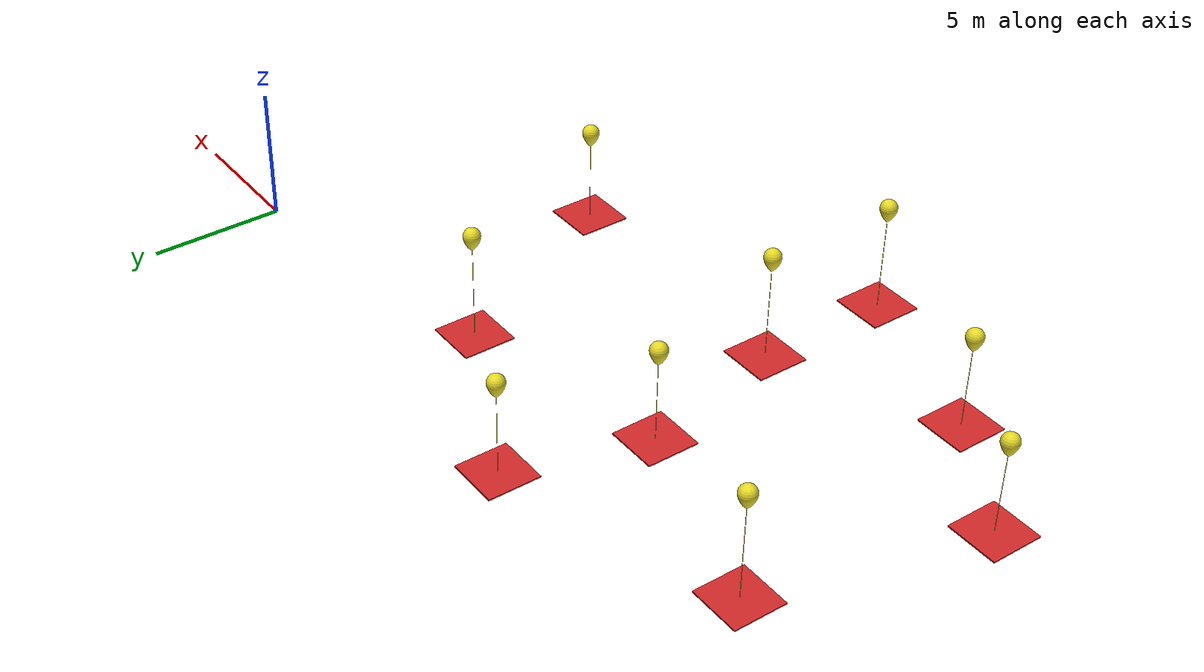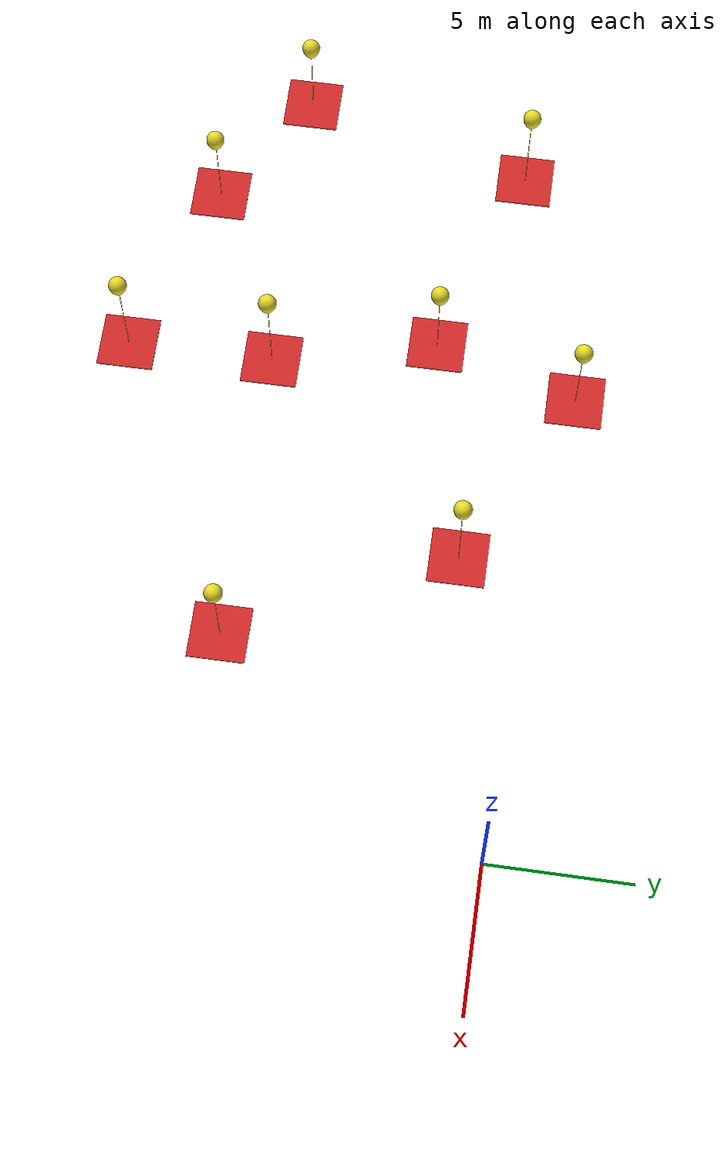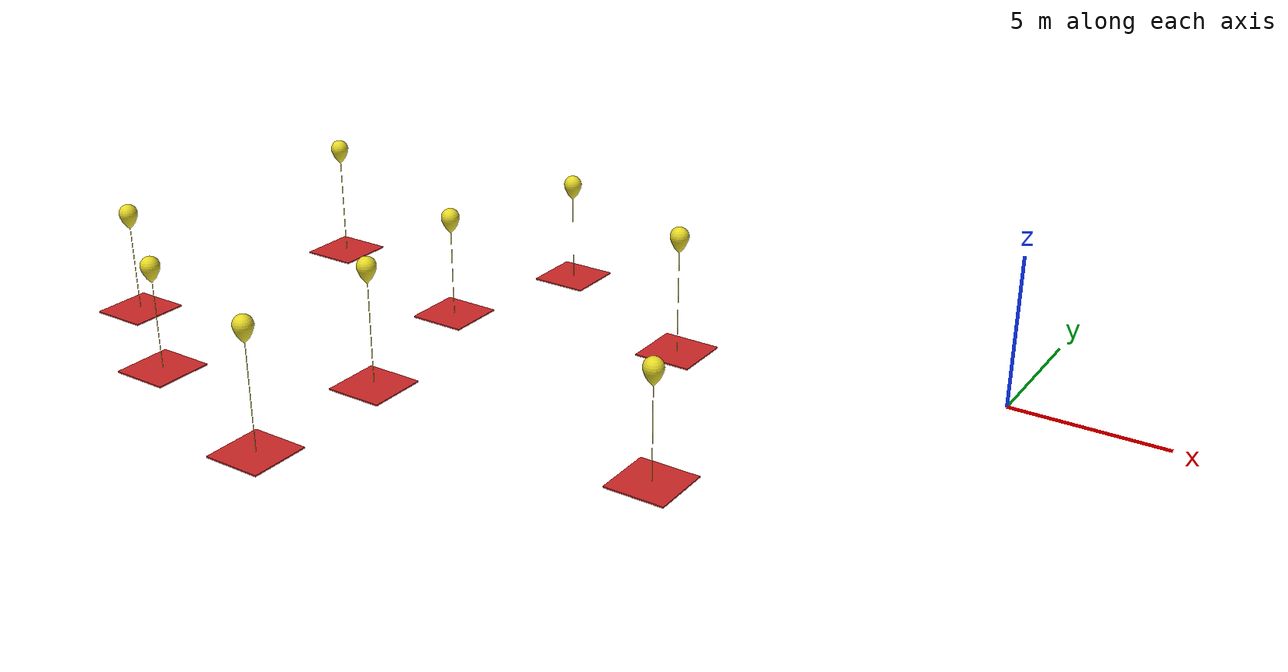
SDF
<sdf version="1.6">
 <world name="default">
  <model name="Balloon4.5m">
   <link name="link_0">
    <pose>0 0 -0.025 0 -0 0</pose>
    <inertial>
     <mass>100</mass>
     <inertia>
      <ixx>0.166667</ixx>
      <ixy>0</ixy>
      <ixz>0</ixz>
      <iyy>0.166667</iyy>
      <iyz>0</iyz>
      <izz>0.166667</izz>
     </inertia>
    </inertial>
    <visual name="visual">
     <geometry><mesh><uri>/home/varun/MBZIRC_Arena/Balloon/Base.dae</uri><scale>1 1 1</scale></mesh></geometry>
     <material>
      <lighting>1</lighting>
      <script><uri>file://media/materials/scripts/gazebo.material</uri><name>Gazebo/Red</name></script>
      <shader type="vertex"><normal_map>__default__</normal_map></shader>
      <ambient>0.3 0.3 0.3 1</ambient>
      <diffuse>1 1 1 1</diffuse>
      <specular>0.1 0.1 0.1 1</specular>
      <emissive>0 0 0 1</emissive>
     </material>
    </visual>
    <collision name="collision">
     <geometry><mesh><uri>/home/varun/MBZIRC_Arena/Balloon/Base.dae</uri><scale>1 1 1</scale></mesh></geometry>
     <surface>
      <friction>
       <ode><mu>1</mu><mu2>1</mu2><fdir1>0 0 0</fdir1><slip1>0</slip1><slip2>0</slip2></ode>
       <torsional>
        <coefficient>1</coefficient>
        <patch_radius>0</patch_radius>
        <surface_radius>0</surface_radius>
        <use_patch_radius>1</use_patch_radius>
        <ode><slip>0</slip></ode>
       </torsional>
      </friction>
      <bounce><restitution_coefficient>0</restitution_coefficient><threshold>1e+06</threshold></bounce>
      <contact>
       <collide_without_contact>0</collide_without_contact>
       <collide_without_contact_bitmask>1</collide_without_contact_bitmask>
       <collide_bitmask>1</collide_bitmask>
       <ode>
        <soft_cfm>0</soft_cfm>
        <soft_erp>0.2</soft_erp>
        <kp>1e+13</kp>
        <kd>1</kd>
        <max_vel>0.01</max_vel>
        <min_depth>0</min_depth>
       </ode>
       <bullet>
        <split_impulse>1</split_impulse>
        <split_impulse_penetration_threshold>-0.01</split_impulse_penetration_threshold>
        <soft_cfm>0</soft_cfm>
        <soft_erp>0.2</soft_erp>
        <kp>1e+13</kp>
        <kd>1</kd>
       </bullet>
      </contact>
     </surface>
    </collision>
   </link>
   <link name="link_1">
    <pose>-0 -0 0.025 0 -0 0</pose>
    <inertial>
     <mass>0.2</mass>
     <inertia>
      <ixx>0.166667</ixx>
      <ixy>0</ixy>
      <ixz>0</ixz>
      <iyy>0.166667</iyy>
      <iyz>0</iyz>
      <izz>0.166667</izz>
     </inertia>
     <pose>0 0 4.5 0 -0 0</pose>
    </inertial>
    <visual name="visual">
     <geometry>
      <mesh><uri>/home/varun/MBZIRC_Arena/Balloon/Balloon4.5m.dae</uri><scale>1 1 1</scale></mesh>
     </geometry>
     <material>
      <lighting>1</lighting>
      <script><uri>file://media/materials/scripts/gazebo.material</uri><name>Gazebo/Yellow</name></script>
      <shader type="pixel"><normal_map>__default__</normal_map></shader>
      <ambient>0.3 0.3 0.3 1</ambient>
      <diffuse>0.7 0.7 0.7 1</diffuse>
      <specular>0.01 0.01 0.01 1</specular>
      <emissive>0 0 0 1</emissive>
     </material>
    </visual>
    <collision name="collision">
     <geometry>
      <mesh><uri>/home/varun/MBZIRC_Arena/Balloon/Balloon4.5m.dae</uri><scale>1 1 1</scale></mesh>
     </geometry>
     <surface>
      <friction>
       <ode><mu>1</mu><mu2>1</mu2><fdir1>0 0 0</fdir1><slip1>0</slip1><slip2>0</slip2></ode>
       <torsional>
        <coefficient>1</coefficient>
        <patch_radius>0</patch_radius>
        <surface_radius>0</surface_radius>
        <use_patch_radius>1</use_patch_radius>
        <ode><slip>0</slip></ode>
       </torsional>
      </friction>
      <bounce><restitution_coefficient>0</restitution_coefficient><threshold>1e+06</threshold></bounce>
      <contact>
       <collide_without_contact>0</collide_without_contact>
       <collide_without_contact_bitmask>1</collide_without_contact_bitmask>
       <collide_bitmask>1</collide_bitmask>
       <ode>
        <soft_cfm>0</soft_cfm>
        <soft_erp>0.2</soft_erp>
        <kp>1e+13</kp>
        <kd>1</kd>
        <max_vel>0.01</max_vel>
        <min_depth>0</min_depth>
       </ode>
       <bullet>
        <split_impulse>1</split_impulse>
        <split_impulse_penetration_threshold>-0.01</split_impulse_penetration_threshold>
        <soft_cfm>0</soft_cfm>
        <soft_erp>0.2</soft_erp>
        <kp>1e+13</kp>
        <kd>1</kd>
       </bullet>
      </contact>
     </surface>
    </collision>
   </link>
   <joint name="ball_joint" type="ball">
    <parent>link_0</parent>
    <child>link_1</child>
    <physics>
     <ode><limit><cfm>0</cfm><erp>0.2</erp></limit><suspension><cfm>0</cfm><erp>0.2</erp></suspension></ode>
    </physics>
   </joint>
   <static>0</static>
   <plugin name="wind_push" filename="libwind_push.so"/>
   <pose>-17.3975 -14.7432 -0.132499 0 -0.000245 0.000348</pose>
  </model>
  <model name="Balloon4.5m_clone">
   <link name="link_0">
    <pose>0 0 -0.025 0 -0 0</pose>
    <inertial>
     <mass>100</mass>
     <inertia>
      <ixx>0.166667</ixx>
      <ixy>0</ixy>
      <ixz>0</ixz>
      <iyy>0.166667</iyy>
      <iyz>0</iyz>
      <izz>0.166667</izz>
     </inertia>
    </inertial>
    <visual name="visual">
     <geometry><mesh><uri>/home/varun/MBZIRC_Arena/Balloon/Base.dae</uri><scale>1 1 1</scale></mesh></geometry>
     <material>
      <lighting>1</lighting>
      <script><uri>file://media/materials/scripts/gazebo.material</uri><name>Gazebo/Red</name></script>
      <shader type="vertex"><normal_map>__default__</normal_map></shader>
      <ambient>0.3 0.3 0.3 1</ambient>
      <diffuse>1 1 1 1</diffuse>
      <specular>0.1 0.1 0.1 1</specular>
      <emissive>0 0 0 1</emissive>
     </material>
    </visual>
    <collision name="collision">
     <geometry><mesh><uri>/home/varun/MBZIRC_Arena/Balloon/Base.dae</uri><scale>1 1 1</scale></mesh></geometry>
     <surface>
      <friction>
       <ode><mu>1</mu><mu2>1</mu2><fdir1>0 0 0</fdir1><slip1>0</slip1><slip2>0</slip2></ode>
       <torsional>
        <coefficient>1</coefficient>
        <patch_radius>0</patch_radius>
        <surface_radius>0</surface_radius>
        <use_patch_radius>1</use_patch_radius>
        <ode><slip>0</slip></ode>
       </torsional>
      </friction>
      <bounce><restitution_coefficient>0</restitution_coefficient><threshold>1e+06</threshold></bounce>
      <contact>
       <collide_without_contact>0</collide_without_contact>
       <collide_without_contact_bitmask>1</collide_without_contact_bitmask>
       <collide_bitmask>1</collide_bitmask>
       <ode>
        <soft_cfm>0</soft_cfm>
        <soft_erp>0.2</soft_erp>
        <kp>1e+13</kp>
        <kd>1</kd>
        <max_vel>0.01</max_vel>
        <min_depth>0</min_depth>
       </ode>
       <bullet>
        <split_impulse>1</split_impulse>
        <split_impulse_penetration_threshold>-0.01</split_impulse_penetration_threshold>
        <soft_cfm>0</soft_cfm>
        <soft_erp>0.2</soft_erp>
        <kp>1e+13</kp>
        <kd>1</kd>
       </bullet>
      </contact>
     </surface>
    </collision>
   </link>
   <link name="link_1">
    <pose>-0 -0 0.025 0 -0 0</pose>
    <inertial>
     <mass>0.2</mass>
     <inertia>
      <ixx>0.166667</ixx>
      <ixy>0</ixy>
      <ixz>0</ixz>
      <iyy>0.166667</iyy>
      <iyz>0</iyz>
      <izz>0.166667</izz>
     </inertia>
     <pose>0 0 4.5 0 -0 0</pose>
    </inertial>
    <visual name="visual">
     <geometry>
      <mesh><uri>/home/varun/MBZIRC_Arena/Balloon/Balloon4.5m.dae</uri><scale>1 1 1</scale></mesh>
     </geometry>
     <material>
      <lighting>1</lighting>
      <script><uri>file://media/materials/scripts/gazebo.material</uri><name>Gazebo/Yellow</name></script>
      <shader type="pixel"><normal_map>__default__</normal_map></shader>
      <ambient>0.3 0.3 0.3 1</ambient>
      <diffuse>0.7 0.7 0.7 1</diffuse>
      <specular>0.01 0.01 0.01 1</specular>
      <emissive>0 0 0 1</emissive>
     </material>
    </visual>
    <collision name="collision">
     <geometry>
      <mesh><uri>/home/varun/MBZIRC_Arena/Balloon/Balloon4.5m.dae</uri><scale>1 1 1</scale></mesh>
     </geometry>
     <surface>
      <friction>
       <ode><mu>1</mu><mu2>1</mu2><fdir1>0 0 0</fdir1><slip1>0</slip1><slip2>0</slip2></ode>
       <torsional>
        <coefficient>1</coefficient>
        <patch_radius>0</patch_radius>
        <surface_radius>0</surface_radius>
        <use_patch_radius>1</use_patch_radius>
        <ode><slip>0</slip></ode>
       </torsional>
      </friction>
      <bounce><restitution_coefficient>0</restitution_coefficient><threshold>1e+06</threshold></bounce>
      <contact>
       <collide_without_contact>0</collide_without_contact>
       <collide_without_contact_bitmask>1</collide_without_contact_bitmask>
       <collide_bitmask>1</collide_bitmask>
       <ode>
        <soft_cfm>0</soft_cfm>
        <soft_erp>0.2</soft_erp>
        <kp>1e+13</kp>
        <kd>1</kd>
        <max_vel>0.01</max_vel>
        <min_depth>0</min_depth>
       </ode>
       <bullet>
        <split_impulse>1</split_impulse>
        <split_impulse_penetration_threshold>-0.01</split_impulse_penetration_threshold>
        <soft_cfm>0</soft_cfm>
        <soft_erp>0.2</soft_erp>
        <kp>1e+13</kp>
        <kd>1</kd>
       </bullet>
      </contact>
     </surface>
    </collision>
   </link>
   <joint name="ball_joint" type="ball">
    <parent>link_0</parent>
    <child>link_1</child>
    <physics>
     <ode><limit><cfm>0</cfm><erp>0.2</erp></limit><suspension><cfm>0</cfm><erp>0.2</erp></suspension></ode>
    </physics>
   </joint>
   <static>0</static>
   <plugin name="wind_push" filename="libwind_push.so"/>
   <pose>-17.397 -9.54962 -0.132553 -0.000299 -0 1e-06</pose>
  </model>
  <model name="Balloon4.5m_clone_0">
   <link name="link_0">
    <pose>0 0 -0.025 0 -0 0</pose>
    <inertial>
     <mass>100</mass>
     <inertia>
      <ixx>0.166667</ixx>
      <ixy>0</ixy>
      <ixz>0</ixz>
      <iyy>0.166667</iyy>
      <iyz>0</iyz>
      <izz>0.166667</izz>
     </inertia>
    </inertial>
    <visual name="visual">
     <geometry><mesh><uri>/home/varun/MBZIRC_Arena/Balloon/Base.dae</uri><scale>1 1 1</scale></mesh></geometry>
     <material>
      <lighting>1</lighting>
      <script><uri>file://media/materials/scripts/gazebo.material</uri><name>Gazebo/Red</name></script>
      <shader type="vertex"><normal_map>__default__</normal_map></shader>
      <ambient>0.3 0.3 0.3 1</ambient>
      <diffuse>1 1 1 1</diffuse>
      <specular>0.1 0.1 0.1 1</specular>
      <emissive>0 0 0 1</emissive>
     </material>
    </visual>
    <collision name="collision">
     <geometry><mesh><uri>/home/varun/MBZIRC_Arena/Balloon/Base.dae</uri><scale>1 1 1</scale></mesh></geometry>
     <surface>
      <friction>
       <ode><mu>1</mu><mu2>1</mu2><fdir1>0 0 0</fdir1><slip1>0</slip1><slip2>0</slip2></ode>
       <torsional>
        <coefficient>1</coefficient>
        <patch_radius>0</patch_radius>
        <surface_radius>0</surface_radius>
        <use_patch_radius>1</use_patch_radius>
        <ode><slip>0</slip></ode>
       </torsional>
      </friction>
      <bounce><restitution_coefficient>0</restitution_coefficient><threshold>1e+06</threshold></bounce>
      <contact>
       <collide_without_contact>0</collide_without_contact>
       <collide_without_contact_bitmask>1</collide_without_contact_bitmask>
       <collide_bitmask>1</collide_bitmask>
       <ode>
        <soft_cfm>0</soft_cfm>
        <soft_erp>0.2</soft_erp>
        <kp>1e+13</kp>
        <kd>1</kd>
        <max_vel>0.01</max_vel>
        <min_depth>0</min_depth>
       </ode>
       <bullet>
        <split_impulse>1</split_impulse>
        <split_impulse_penetration_threshold>-0.01</split_impulse_penetration_threshold>
        <soft_cfm>0</soft_cfm>
        <soft_erp>0.2</soft_erp>
        <kp>1e+13</kp>
        <kd>1</kd>
       </bullet>
      </contact>
     </surface>
    </collision>
   </link>
   <link name="link_1">
    <pose>-0 -0 0.025 0 -0 0</pose>
    <inertial>
     <mass>0.2</mass>
     <inertia>
      <ixx>0.166667</ixx>
      <ixy>0</ixy>
      <ixz>0</ixz>
      <iyy>0.166667</iyy>
      <iyz>0</iyz>
      <izz>0.166667</izz>
     </inertia>
     <pose>0 0 4.5 0 -0 0</pose>
    </inertial>
    <visual name="visual">
     <geometry>
      <mesh><uri>/home/varun/MBZIRC_Arena/Balloon/Balloon4.5m.dae</uri><scale>1 1 1</scale></mesh>
     </geometry>
     <material>
      <lighting>1</lighting>
      <script><uri>file://media/materials/scripts/gazebo.material</uri><name>Gazebo/Yellow</name></script>
      <shader type="pixel"><normal_map>__default__</normal_map></shader>
      <ambient>0.3 0.3 0.3 1</ambient>
      <diffuse>0.7 0.7 0.7 1</diffuse>
      <specular>0.01 0.01 0.01 1</specular>
      <emissive>0 0 0 1</emissive>
     </material>
    </visual>
    <collision name="collision">
     <geometry>
      <mesh><uri>/home/varun/MBZIRC_Arena/Balloon/Balloon4.5m.dae</uri><scale>1 1 1</scale></mesh>
     </geometry>
     <surface>
      <friction>
       <ode><mu>1</mu><mu2>1</mu2><fdir1>0 0 0</fdir1><slip1>0</slip1><slip2>0</slip2></ode>
       <torsional>
        <coefficient>1</coefficient>
        <patch_radius>0</patch_radius>
        <surface_radius>0</surface_radius>
        <use_patch_radius>1</use_patch_radius>
        <ode><slip>0</slip></ode>
       </torsional>
      </friction>
      <bounce><restitution_coefficient>0</restitution_coefficient><threshold>1e+06</threshold></bounce>
      <contact>
       <collide_without_contact>0</collide_without_contact>
       <collide_without_contact_bitmask>1</collide_without_contact_bitmask>
       <collide_bitmask>1</collide_bitmask>
       <ode>
        <soft_cfm>0</soft_cfm>
        <soft_erp>0.2</soft_erp>
        <kp>1e+13</kp>
        <kd>1</kd>
        <max_vel>0.01</max_vel>
        <min_depth>0</min_depth>
       </ode>
       <bullet>
        <split_impulse>1</split_impulse>
        <split_impulse_penetration_threshold>-0.01</split_impulse_penetration_threshold>
        <soft_cfm>0</soft_cfm>
        <soft_erp>0.2</soft_erp>
        <kp>1e+13</kp>
        <kd>1</kd>
       </bullet>
      </contact>
     </surface>
    </collision>
   </link>
   <joint name="ball_joint" type="ball">
    <parent>link_0</parent>
    <child>link_1</child>
    <physics>
     <ode><limit><cfm>0</cfm><erp>0.2</erp></limit><suspension><cfm>0</cfm><erp>0.2</erp></suspension></ode>
    </physics>
   </joint>
   <static>0</static>
   <plugin name="wind_push" filename="libwind_push.so"/>
   <pose>-10.6597 -2.02133 -0.132512 -0.001234 0.000724 -0.000836</pose>
  </model>
  <model name="Balloon4.5m_clone_11">
   <link name="link_0">
    <pose>0 0 -0.025 0 -0 0</pose>
    <inertial>
     <mass>100</mass>
     <inertia>
      <ixx>0.166667</ixx>
      <ixy>0</ixy>
      <ixz>0</ixz>
      <iyy>0.166667</iyy>
      <iyz>0</iyz>
      <izz>0.166667</izz>
     </inertia>
    </inertial>
    <visual name="visual">
     <geometry><mesh><uri>/home/varun/MBZIRC_Arena/Balloon/Base.dae</uri><scale>1 1 1</scale></mesh></geometry>
     <material>
      <lighting>1</lighting>
      <script><uri>file://media/materials/scripts/gazebo.material</uri><name>Gazebo/Red</name></script>
      <shader type="vertex"><normal_map>__default__</normal_map></shader>
      <ambient>0.3 0.3 0.3 1</ambient>
      <diffuse>1 1 1 1</diffuse>
      <specular>0.1 0.1 0.1 1</specular>
      <emissive>0 0 0 1</emissive>
     </material>
    </visual>
    <collision name="collision">
     <geometry><mesh><uri>/home/varun/MBZIRC_Arena/Balloon/Base.dae</uri><scale>1 1 1</scale></mesh></geometry>
     <surface>
      <friction>
       <ode><mu>1</mu><mu2>1</mu2><fdir1>0 0 0</fdir1><slip1>0</slip1><slip2>0</slip2></ode>
       <torsional>
        <coefficient>1</coefficient>
        <patch_radius>0</patch_radius>
        <surface_radius>0</surface_radius>
        <use_patch_radius>1</use_patch_radius>
        <ode><slip>0</slip></ode>
       </torsional>
      </friction>
      <bounce><restitution_coefficient>0</restitution_coefficient><threshold>1e+06</threshold></bounce>
      <contact>
       <collide_without_contact>0</collide_without_contact>
       <collide_without_contact_bitmask>1</collide_without_contact_bitmask>
       <collide_bitmask>1</collide_bitmask>
       <ode>
        <soft_cfm>0</soft_cfm>
        <soft_erp>0.2</soft_erp>
        <kp>1e+13</kp>
        <kd>1</kd>
        <max_vel>0.01</max_vel>
        <min_depth>0</min_depth>
       </ode>
       <bullet>
        <split_impulse>1</split_impulse>
        <split_impulse_penetration_threshold>-0.01</split_impulse_penetration_threshold>
        <soft_cfm>0</soft_cfm>
        <soft_erp>0.2</soft_erp>
        <kp>1e+13</kp>
        <kd>1</kd>
       </bullet>
      </contact>
     </surface>
    </collision>
   </link>
   <link name="link_1">
    <pose>-0 -0 0.025 0 -0 0</pose>
    <inertial>
     <mass>0.2</mass>
     <inertia>
      <ixx>0.166667</ixx>
      <ixy>0</ixy>
      <ixz>0</ixz>
      <iyy>0.166667</iyy>
      <iyz>0</iyz>
      <izz>0.166667</izz>
     </inertia>
     <pose>0 0 4.5 0 -0 0</pose>
    </inertial>
    <visual name="visual">
     <geometry>
      <mesh><uri>/home/varun/MBZIRC_Arena/Balloon/Balloon4.5m.dae</uri><scale>1 1 1</scale></mesh>
     </geometry>
     <material>
      <lighting>1</lighting>
      <script><uri>file://media/materials/scripts/gazebo.material</uri><name>Gazebo/Yellow</name></script>
      <shader type="pixel"><normal_map>__default__</normal_map></shader>
      <ambient>0.3 0.3 0.3 1</ambient>
      <diffuse>0.7 0.7 0.7 1</diffuse>
      <specular>0.01 0.01 0.01 1</specular>
      <emissive>0 0 0 1</emissive>
     </material>
    </visual>
    <collision name="collision">
     <geometry>
      <mesh><uri>/home/varun/MBZIRC_Arena/Balloon/Balloon4.5m.dae</uri><scale>1 1 1</scale></mesh>
     </geometry>
     <surface>
      <friction>
       <ode><mu>1</mu><mu2>1</mu2><fdir1>0 0 0</fdir1><slip1>0</slip1><slip2>0</slip2></ode>
       <torsional>
        <coefficient>1</coefficient>
        <patch_radius>0</patch_radius>
        <surface_radius>0</surface_radius>
        <use_patch_radius>1</use_patch_radius>
        <ode><slip>0</slip></ode>
       </torsional>
      </friction>
      <bounce><restitution_coefficient>0</restitution_coefficient><threshold>1e+06</threshold></bounce>
      <contact>
       <collide_without_contact>0</collide_without_contact>
       <collide_without_contact_bitmask>1</collide_without_contact_bitmask>
       <collide_bitmask>1</collide_bitmask>
       <ode>
        <soft_cfm>0</soft_cfm>
        <soft_erp>0.2</soft_erp>
        <kp>1e+13</kp>
        <kd>1</kd>
        <max_vel>0.01</max_vel>
        <min_depth>0</min_depth>
       </ode>
       <bullet>
        <split_impulse>1</split_impulse>
        <split_impulse_penetration_threshold>-0.01</split_impulse_penetration_threshold>
        <soft_cfm>0</soft_cfm>
        <soft_erp>0.2</soft_erp>
        <kp>1e+13</kp>
        <kd>1</kd>
       </bullet>
      </contact>
     </surface>
    </collision>
   </link>
   <joint name="ball_joint" type="ball">
    <parent>link_0</parent>
    <child>link_1</child>
    <physics>
     <ode><limit><cfm>0</cfm><erp>0.2</erp></limit><suspension><cfm>0</cfm><erp>0.2</erp></suspension></ode>
    </physics>
   </joint>
   <static>0</static>
   <plugin name="wind_push" filename="libwind_push.so"/>
   <pose>-26.0207 -1.36331 -0.132411 0.000157 -0 0.000229</pose>
  </model>
  <model name="Balloon4m">
   <link name="link_0">
    <pose>0 0 -0.025 0 -0 0</pose>
    <inertial>
     <mass>100</mass>
     <inertia>
      <ixx>0.166667</ixx>
      <ixy>0</ixy>
      <ixz>0</ixz>
      <iyy>0.166667</iyy>
      <iyz>0</iyz>
      <izz>0.166667</izz>
     </inertia>
    </inertial>
    <visual name="visual">
     <geometry><mesh><uri>/home/varun/MBZIRC_Arena/Balloon/Base.dae</uri><scale>1 1 1</scale></mesh></geometry>
     <material>
      <lighting>1</lighting>
      <script><uri>file://media/materials/scripts/gazebo.material</uri><name>Gazebo/Red</name></script>
      <shader type="vertex"><normal_map>__default__</normal_map></shader>
      <ambient>0.3 0.3 0.3 1</ambient>
      <diffuse>1 1 1 1</diffuse>
      <specular>0.1 0.1 0.1 1</specular>
      <emissive>0 0 0 1</emissive>
     </material>
    </visual>
    <collision name="collision">
     <geometry><mesh><uri>/home/varun/MBZIRC_Arena/Balloon/Base.dae</uri><scale>1 1 1</scale></mesh></geometry>
     <surface>
      <friction>
       <ode><mu>1</mu><mu2>1</mu2><fdir1>0 0 0</fdir1><slip1>0</slip1><slip2>0</slip2></ode>
       <torsional>
        <coefficient>1</coefficient>
        <patch_radius>0</patch_radius>
        <surface_radius>0</surface_radius>
        <use_patch_radius>1</use_patch_radius>
        <ode><slip>0</slip></ode>
       </torsional>
      </friction>
      <bounce><restitution_coefficient>0</restitution_coefficient><threshold>1e+06</threshold></bounce>
      <contact>
       <collide_without_contact>0</collide_without_contact>
       <collide_without_contact_bitmask>1</collide_without_contact_bitmask>
       <collide_bitmask>1</collide_bitmask>
       <ode>
        <soft_cfm>0</soft_cfm>
        <soft_erp>0.2</soft_erp>
        <kp>1e+13</kp>
        <kd>1</kd>
        <max_vel>0.01</max_vel>
        <min_depth>0</min_depth>
       </ode>
       <bullet>
        <split_impulse>1</split_impulse>
        <split_impulse_penetration_threshold>-0.01</split_impulse_penetration_threshold>
        <soft_cfm>0</soft_cfm>
        <soft_erp>0.2</soft_erp>
        <kp>1e+13</kp>
        <kd>1</kd>
       </bullet>
      </contact>
     </surface>
    </collision>
   </link>
   <link name="link_1">
    <pose>-0 -0 0.025 0 -0 0</pose>
    <inertial>
     <mass>0.2</mass>
     <inertia>
      <ixx>0.166667</ixx>
      <ixy>0</ixy>
      <ixz>0</ixz>
      <iyy>0.166667</iyy>
      <iyz>0</iyz>
      <izz>0.166667</izz>
     </inertia>
     <pose>0 0 4 0 -0 0</pose>
    </inertial>
    <visual name="visual">
     <geometry>
      <mesh><uri>/home/varun/MBZIRC_Arena/Balloon/Balloon4m.dae</uri><scale>1 1 1</scale></mesh>
     </geometry>
     <material>
      <lighting>1</lighting>
      <script><uri>file://media/materials/scripts/gazebo.material</uri><name>Gazebo/Yellow</name></script>
      <shader type="pixel"><normal_map>__default__</normal_map></shader>
      <ambient>0.3 0.3 0.3 1</ambient>
      <diffuse>0.7 0.7 0.7 1</diffuse>
      <specular>0.01 0.01 0.01 1</specular>
      <emissive>0 0 0 1</emissive>
     </material>
    </visual>
    <collision name="collision">
     <geometry>
      <mesh><uri>/home/varun/MBZIRC_Arena/Balloon/Balloon4m.dae</uri><scale>1 1 1</scale></mesh>
     </geometry>
     <surface>
      <friction>
       <ode><mu>1</mu><mu2>1</mu2><fdir1>0 0 0</fdir1><slip1>0</slip1><slip2>0</slip2></ode>
       <torsional>
        <coefficient>1</coefficient>
        <patch_radius>0</patch_radius>
        <surface_radius>0</surface_radius>
        <use_patch_radius>1</use_patch_radius>
        <ode><slip>0</slip></ode>
       </torsional>
      </friction>
      <bounce><restitution_coefficient>0</restitution_coefficient><threshold>1e+06</threshold></bounce>
      <contact>
       <collide_without_contact>0</collide_without_contact>
       <collide_without_contact_bitmask>1</collide_without_contact_bitmask>
       <collide_bitmask>1</collide_bitmask>
       <ode>
        <soft_cfm>0</soft_cfm>
        <soft_erp>0.2</soft_erp>
        <kp>1e+13</kp>
        <kd>1</kd>
        <max_vel>0.01</max_vel>
        <min_depth>0</min_depth>
       </ode>
       <bullet>
        <split_impulse>1</split_impulse>
        <split_impulse_penetration_threshold>-0.01</split_impulse_penetration_threshold>
        <soft_cfm>0</soft_cfm>
        <soft_erp>0.2</soft_erp>
        <kp>1e+13</kp>
        <kd>1</kd>
       </bullet>
      </contact>
     </surface>
    </collision>
   </link>
   <joint name="ball_joint" type="ball">
    <parent>link_0</parent>
    <child>link_1</child>
    <physics>
     <ode><limit><cfm>0</cfm><erp>0.2</erp></limit><suspension><cfm>0</cfm><erp>0.2</erp></suspension></ode>
    </physics>
   </joint>
   <static>0</static>
   <plugin name="wind_push" filename="libwind_push.so"/>
   <pose>-18.7718 -3.7543 -0.132545 0 -0.000291 5.8e-05</pose>
  </model>
  <model name="Balloon4m_clone_0">
   <link name="link_0">
    <pose>0 0 -0.025 0 -0 0</pose>
    <inertial>
     <mass>100</mass>
     <inertia>
      <ixx>0.166667</ixx>
      <ixy>0</ixy>
      <ixz>0</ixz>
      <iyy>0.166667</iyy>
      <iyz>0</iyz>
      <izz>0.166667</izz>
     </inertia>
    </inertial>
    <visual name="visual">
     <geometry><mesh><uri>/home/varun/MBZIRC_Arena/Balloon/Base.dae</uri><scale>1 1 1</scale></mesh></geometry>
     <material>
      <lighting>1</lighting>
      <script><uri>file://media/materials/scripts/gazebo.material</uri><name>Gazebo/Red</name></script>
      <shader type="vertex"><normal_map>__default__</normal_map></shader>
      <ambient>0.3 0.3 0.3 1</ambient>
      <diffuse>1 1 1 1</diffuse>
      <specular>0.1 0.1 0.1 1</specular>
      <emissive>0 0 0 1</emissive>
     </material>
    </visual>
    <collision name="collision">
     <geometry><mesh><uri>/home/varun/MBZIRC_Arena/Balloon/Base.dae</uri><scale>1 1 1</scale></mesh></geometry>
     <surface>
      <friction>
       <ode><mu>1</mu><mu2>1</mu2><fdir1>0 0 0</fdir1><slip1>0</slip1><slip2>0</slip2></ode>
       <torsional>
        <coefficient>1</coefficient>
        <patch_radius>0</patch_radius>
        <surface_radius>0</surface_radius>
        <use_patch_radius>1</use_patch_radius>
        <ode><slip>0</slip></ode>
       </torsional>
      </friction>
      <bounce><restitution_coefficient>0</restitution_coefficient><threshold>1e+06</threshold></bounce>
      <contact>
       <collide_without_contact>0</collide_without_contact>
       <collide_without_contact_bitmask>1</collide_without_contact_bitmask>
       <collide_bitmask>1</collide_bitmask>
       <ode>
        <soft_cfm>0</soft_cfm>
        <soft_erp>0.2</soft_erp>
        <kp>1e+13</kp>
        <kd>1</kd>
        <max_vel>0.01</max_vel>
        <min_depth>0</min_depth>
       </ode>
       <bullet>
        <split_impulse>1</split_impulse>
        <split_impulse_penetration_threshold>-0.01</split_impulse_penetration_threshold>
        <soft_cfm>0</soft_cfm>
        <soft_erp>0.2</soft_erp>
        <kp>1e+13</kp>
        <kd>1</kd>
       </bullet>
      </contact>
     </surface>
    </collision>
   </link>
   <link name="link_1">
    <pose>-0 -0 0.025 0 -0 0</pose>
    <inertial>
     <mass>0.2</mass>
     <inertia>
      <ixx>0.166667</ixx>
      <ixy>0</ixy>
      <ixz>0</ixz>
      <iyy>0.166667</iyy>
      <iyz>0</iyz>
      <izz>0.166667</izz>
     </inertia>
     <pose>0 0 4 0 -0 0</pose>
    </inertial>
    <visual name="visual">
     <geometry>
      <mesh><uri>/home/varun/MBZIRC_Arena/Balloon/Balloon4m.dae</uri><scale>1 1 1</scale></mesh>
     </geometry>
     <material>
      <lighting>1</lighting>
      <script><uri>file://media/materials/scripts/gazebo.material</uri><name>Gazebo/Yellow</name></script>
      <shader type="pixel"><normal_map>__default__</normal_map></shader>
      <ambient>0.3 0.3 0.3 1</ambient>
      <diffuse>0.7 0.7 0.7 1</diffuse>
      <specular>0.01 0.01 0.01 1</specular>
      <emissive>0 0 0 1</emissive>
     </material>
    </visual>
    <collision name="collision">
     <geometry>
      <mesh><uri>/home/varun/MBZIRC_Arena/Balloon/Balloon4m.dae</uri><scale>1 1 1</scale></mesh>
     </geometry>
     <surface>
      <friction>
       <ode><mu>1</mu><mu2>1</mu2><fdir1>0 0 0</fdir1><slip1>0</slip1><slip2>0</slip2></ode>
       <torsional>
        <coefficient>1</coefficient>
        <patch_radius>0</patch_radius>
        <surface_radius>0</surface_radius>
        <use_patch_radius>1</use_patch_radius>
        <ode><slip>0</slip></ode>
       </torsional>
      </friction>
      <bounce><restitution_coefficient>0</restitution_coefficient><threshold>1e+06</threshold></bounce>
      <contact>
       <collide_without_contact>0</collide_without_contact>
       <collide_without_contact_bitmask>1</collide_without_contact_bitmask>
       <collide_bitmask>1</collide_bitmask>
       <ode>
        <soft_cfm>0</soft_cfm>
        <soft_erp>0.2</soft_erp>
        <kp>1e+13</kp>
        <kd>1</kd>
        <max_vel>0.01</max_vel>
        <min_depth>0</min_depth>
       </ode>
       <bullet>
        <split_impulse>1</split_impulse>
        <split_impulse_penetration_threshold>-0.01</split_impulse_penetration_threshold>
        <soft_cfm>0</soft_cfm>
        <soft_erp>0.2</soft_erp>
        <kp>1e+13</kp>
        <kd>1</kd>
       </bullet>
      </contact>
     </surface>
    </collision>
   </link>
   <joint name="ball_joint" type="ball">
    <parent>link_0</parent>
    <child>link_1</child>
    <physics>
     <ode><limit><cfm>0</cfm><erp>0.2</erp></limit><suspension><cfm>0</cfm><erp>0.2</erp></suspension></ode>
    </physics>
   </joint>
   <static>0</static>
   <plugin name="wind_push" filename="libwind_push.so"/>
   <pose>-28.2778 -9.63063 -0.132624 0 -0.00037 -8.3e-05</pose>
  </model>
  <model name="Balloon4m_clone_1">
   <link name="link_0">
    <pose>0 0 -0.025 0 -0 0</pose>
    <inertial>
     <mass>100</mass>
     <inertia>
      <ixx>0.166667</ixx>
      <ixy>0</ixy>
      <ixz>0</ixz>
      <iyy>0.166667</iyy>
      <iyz>0</iyz>
      <izz>0.166667</izz>
     </inertia>
    </inertial>
    <visual name="visual">
     <geometry><mesh><uri>/home/varun/MBZIRC_Arena/Balloon/Base.dae</uri><scale>1 1 1</scale></mesh></geometry>
     <material>
      <lighting>1</lighting>
      <script><uri>file://media/materials/scripts/gazebo.material</uri><name>Gazebo/Red</name></script>
      <shader type="vertex"><normal_map>__default__</normal_map></shader>
      <ambient>0.3 0.3 0.3 1</ambient>
      <diffuse>1 1 1 1</diffuse>
      <specular>0.1 0.1 0.1 1</specular>
      <emissive>0 0 0 1</emissive>
     </material>
    </visual>
    <collision name="collision">
     <geometry><mesh><uri>/home/varun/MBZIRC_Arena/Balloon/Base.dae</uri><scale>1 1 1</scale></mesh></geometry>
     <surface>
      <friction>
       <ode><mu>1</mu><mu2>1</mu2><fdir1>0 0 0</fdir1><slip1>0</slip1><slip2>0</slip2></ode>
       <torsional>
        <coefficient>1</coefficient>
        <patch_radius>0</patch_radius>
        <surface_radius>0</surface_radius>
        <use_patch_radius>1</use_patch_radius>
        <ode><slip>0</slip></ode>
       </torsional>
      </friction>
      <bounce><restitution_coefficient>0</restitution_coefficient><threshold>1e+06</threshold></bounce>
      <contact>
       <collide_without_contact>0</collide_without_contact>
       <collide_without_contact_bitmask>1</collide_without_contact_bitmask>
       <collide_bitmask>1</collide_bitmask>
       <ode>
        <soft_cfm>0</soft_cfm>
        <soft_erp>0.2</soft_erp>
        <kp>1e+13</kp>
        <kd>1</kd>
        <max_vel>0.01</max_vel>
        <min_depth>0</min_depth>
       </ode>
       <bullet>
        <split_impulse>1</split_impulse>
        <split_impulse_penetration_threshold>-0.01</split_impulse_penetration_threshold>
        <soft_cfm>0</soft_cfm>
        <soft_erp>0.2</soft_erp>
        <kp>1e+13</kp>
        <kd>1</kd>
       </bullet>
      </contact>
     </surface>
    </collision>
   </link>
   <link name="link_1">
    <pose>-0 -0 0.025 0 -0 0</pose>
    <inertial>
     <mass>0.2</mass>
     <inertia>
      <ixx>0.166667</ixx>
      <ixy>0</ixy>
      <ixz>0</ixz>
      <iyy>0.166667</iyy>
      <iyz>0</iyz>
      <izz>0.166667</izz>
     </inertia>
     <pose>0 0 4 0 -0 0</pose>
    </inertial>
    <visual name="visual">
     <geometry>
      <mesh><uri>/home/varun/MBZIRC_Arena/Balloon/Balloon4m.dae</uri><scale>1 1 1</scale></mesh>
     </geometry>
     <material>
      <lighting>1</lighting>
      <script><uri>file://media/materials/scripts/gazebo.material</uri><name>Gazebo/Yellow</name></script>
      <shader type="pixel"><normal_map>__default__</normal_map></shader>
      <ambient>0.3 0.3 0.3 1</ambient>
      <diffuse>0.7 0.7 0.7 1</diffuse>
      <specular>0.01 0.01 0.01 1</specular>
      <emissive>0 0 0 1</emissive>
     </material>
    </visual>
    <collision name="collision">
     <geometry>
      <mesh><uri>/home/varun/MBZIRC_Arena/Balloon/Balloon4m.dae</uri><scale>1 1 1</scale></mesh>
     </geometry>
     <surface>
      <friction>
       <ode><mu>1</mu><mu2>1</mu2><fdir1>0 0 0</fdir1><slip1>0</slip1><slip2>0</slip2></ode>
       <torsional>
        <coefficient>1</coefficient>
        <patch_radius>0</patch_radius>
        <surface_radius>0</surface_radius>
        <use_patch_radius>1</use_patch_radius>
        <ode><slip>0</slip></ode>
       </torsional>
      </friction>
      <bounce><restitution_coefficient>0</restitution_coefficient><threshold>1e+06</threshold></bounce>
      <contact>
       <collide_without_contact>0</collide_without_contact>
       <collide_without_contact_bitmask>1</collide_without_contact_bitmask>
       <collide_bitmask>1</collide_bitmask>
       <ode>
        <soft_cfm>0</soft_cfm>
        <soft_erp>0.2</soft_erp>
        <kp>1e+13</kp>
        <kd>1</kd>
        <max_vel>0.01</max_vel>
        <min_depth>0</min_depth>
       </ode>
       <bullet>
        <split_impulse>1</split_impulse>
        <split_impulse_penetration_threshold>-0.01</split_impulse_penetration_threshold>
        <soft_cfm>0</soft_cfm>
        <soft_erp>0.2</soft_erp>
        <kp>1e+13</kp>
        <kd>1</kd>
       </bullet>
      </contact>
     </surface>
    </collision>
   </link>
   <joint name="ball_joint" type="ball">
    <parent>link_0</parent>
    <child>link_1</child>
    <physics>
     <ode><limit><cfm>0</cfm><erp>0.2</erp></limit><suspension><cfm>0</cfm><erp>0.2</erp></suspension></ode>
    </physics>
   </joint>
   <static>0</static>
   <plugin name="wind_push" filename="libwind_push.so"/>
   <pose>-6.84779 -9.72997 -0.132437 0 0.000183 -8.2e-05</pose>
  </model>
  <model name="Balloon5m_clone">
   <link name="link_0">
    <pose>0 0 -0.025 0 -0 0</pose>
    <inertial>
     <mass>100</mass>
     <inertia>
      <ixx>0.166667</ixx>
      <ixy>0</ixy>
      <ixz>0</ixz>
      <iyy>0.166667</iyy>
      <iyz>0</iyz>
      <izz>0.166667</izz>
     </inertia>
    </inertial>
    <visual name="visual">
     <geometry><mesh><uri>/home/varun/MBZIRC_Arena/Balloon/Base.dae</uri><scale>1 1 1</scale></mesh></geometry>
     <material>
      <lighting>1</lighting>
      <script><uri>file://media/materials/scripts/gazebo.material</uri><name>Gazebo/Red</name></script>
      <shader type="vertex"><normal_map>__default__</normal_map></shader>
      <ambient>0.3 0.3 0.3 1</ambient>
      <diffuse>1 1 1 1</diffuse>
      <specular>0.1 0.1 0.1 1</specular>
      <emissive>0 0 0 1</emissive>
     </material>
    </visual>
    <collision name="collision">
     <geometry><mesh><uri>/home/varun/MBZIRC_Arena/Balloon/Base.dae</uri><scale>1 1 1</scale></mesh></geometry>
     <surface>
      <friction>
       <ode><mu>1</mu><mu2>1</mu2><fdir1>0 0 0</fdir1><slip1>0</slip1><slip2>0</slip2></ode>
       <torsional>
        <coefficient>1</coefficient>
        <patch_radius>0</patch_radius>
        <surface_radius>0</surface_radius>
        <use_patch_radius>1</use_patch_radius>
        <ode><slip>0</slip></ode>
       </torsional>
      </friction>
      <bounce><restitution_coefficient>0</restitution_coefficient><threshold>1e+06</threshold></bounce>
      <contact>
       <collide_without_contact>0</collide_without_contact>
       <collide_without_contact_bitmask>1</collide_without_contact_bitmask>
       <collide_bitmask>1</collide_bitmask>
       <ode>
        <soft_cfm>0</soft_cfm>
        <soft_erp>0.2</soft_erp>
        <kp>1e+13</kp>
        <kd>1</kd>
        <max_vel>0.01</max_vel>
        <min_depth>0</min_depth>
       </ode>
       <bullet>
        <split_impulse>1</split_impulse>
        <split_impulse_penetration_threshold>-0.01</split_impulse_penetration_threshold>
        <soft_cfm>0</soft_cfm>
        <soft_erp>0.2</soft_erp>
        <kp>1e+13</kp>
        <kd>1</kd>
       </bullet>
      </contact>
     </surface>
    </collision>
   </link>
   <link name="link_1">
    <pose>-0 -0 0.025 0 -0 0</pose>
    <inertial>
     <mass>0.2</mass>
     <inertia>
      <ixx>0.166667</ixx>
      <ixy>0</ixy>
      <ixz>0</ixz>
      <iyy>0.166667</iyy>
      <iyz>0</iyz>
      <izz>0.166667</izz>
     </inertia>
     <pose>0 0 5 0 -0 0</pose>
    </inertial>
    <visual name="visual">
     <geometry>
      <mesh><uri>/home/varun/MBZIRC_Arena/Balloon/Balloon5m.dae</uri><scale>1 1 1</scale></mesh>
     </geometry>
     <material>
      <lighting>1</lighting>
      <script><uri>file://media/materials/scripts/gazebo.material</uri><name>Gazebo/Yellow</name></script>
      <shader type="pixel"><normal_map>__default__</normal_map></shader>
      <ambient>0.3 0.3 0.3 1</ambient>
      <diffuse>0.7 0.7 0.7 1</diffuse>
      <specular>0.01 0.01 0.01 1</specular>
      <emissive>0 0 0 1</emissive>
     </material>
    </visual>
    <collision name="collision">
     <geometry>
      <mesh><uri>/home/varun/MBZIRC_Arena/Balloon/Balloon5m.dae</uri><scale>1 1 1</scale></mesh>
     </geometry>
     <surface>
      <friction>
       <ode><mu>1</mu><mu2>1</mu2><fdir1>0 0 0</fdir1><slip1>0</slip1><slip2>0</slip2></ode>
       <torsional>
        <coefficient>1</coefficient>
        <patch_radius>0</patch_radius>
        <surface_radius>0</surface_radius>
        <use_patch_radius>1</use_patch_radius>
        <ode><slip>0</slip></ode>
       </torsional>
      </friction>
      <bounce><restitution_coefficient>0</restitution_coefficient><threshold>1e+06</threshold></bounce>
      <contact>
       <collide_without_contact>0</collide_without_contact>
       <collide_without_contact_bitmask>1</collide_without_contact_bitmask>
       <collide_bitmask>1</collide_bitmask>
       <ode>
        <soft_cfm>0</soft_cfm>
        <soft_erp>0.2</soft_erp>
        <kp>1e+13</kp>
        <kd>1</kd>
        <max_vel>0.01</max_vel>
        <min_depth>0</min_depth>
       </ode>
       <bullet>
        <split_impulse>1</split_impulse>
        <split_impulse_penetration_threshold>-0.01</split_impulse_penetration_threshold>
        <soft_cfm>0</soft_cfm>
        <soft_erp>0.2</soft_erp>
        <kp>1e+13</kp>
        <kd>1</kd>
       </bullet>
      </contact>
     </surface>
    </collision>
   </link>
   <joint name="ball_joint" type="ball">
    <parent>link_0</parent>
    <child>link_1</child>
    <physics>
     <ode><limit><cfm>0</cfm><erp>0.2</erp></limit><suspension><cfm>0</cfm><erp>0.2</erp></suspension></ode>
    </physics>
   </joint>
   <static>0</static>
   <plugin name="wind_push" filename="libwind_push.so"/>
   <pose>-17.1961 1.3711 -0.132778 0 -0.000524 -0.000107</pose>
  </model>
  <model name="Balloon5m_clone_0">
   <link name="link_0">
    <pose>0 0 -0.025 0 -0 0</pose>
    <inertial>
     <mass>100</mass>
     <inertia>
      <ixx>0.166667</ixx>
      <ixy>0</ixy>
      <ixz>0</ixz>
      <iyy>0.166667</iyy>
      <iyz>0</iyz>
      <izz>0.166667</izz>
     </inertia>
    </inertial>
    <visual name="visual">
     <geometry><mesh><uri>/home/varun/MBZIRC_Arena/Balloon/Base.dae</uri><scale>1 1 1</scale></mesh></geometry>
     <material>
      <lighting>1</lighting>
      <script><uri>file://media/materials/scripts/gazebo.material</uri><name>Gazebo/Red</name></script>
      <shader type="vertex"><normal_map>__default__</normal_map></shader>
      <ambient>0.3 0.3 0.3 1</ambient>
      <diffuse>1 1 1 1</diffuse>
      <specular>0.1 0.1 0.1 1</specular>
      <emissive>0 0 0 1</emissive>
     </material>
    </visual>
    <collision name="collision">
     <geometry><mesh><uri>/home/varun/MBZIRC_Arena/Balloon/Base.dae</uri><scale>1 1 1</scale></mesh></geometry>
     <surface>
      <friction>
       <ode><mu>1</mu><mu2>1</mu2><fdir1>0 0 0</fdir1><slip1>0</slip1><slip2>0</slip2></ode>
       <torsional>
        <coefficient>1</coefficient>
        <patch_radius>0</patch_radius>
        <surface_radius>0</surface_radius>
        <use_patch_radius>1</use_patch_radius>
        <ode><slip>0</slip></ode>
       </torsional>
      </friction>
      <bounce><restitution_coefficient>0</restitution_coefficient><threshold>1e+06</threshold></bounce>
      <contact>
       <collide_without_contact>0</collide_without_contact>
       <collide_without_contact_bitmask>1</collide_without_contact_bitmask>
       <collide_bitmask>1</collide_bitmask>
       <ode>
        <soft_cfm>0</soft_cfm>
        <soft_erp>0.2</soft_erp>
        <kp>1e+13</kp>
        <kd>1</kd>
        <max_vel>0.01</max_vel>
        <min_depth>0</min_depth>
       </ode>
       <bullet>
        <split_impulse>1</split_impulse>
        <split_impulse_penetration_threshold>-0.01</split_impulse_penetration_threshold>
        <soft_cfm>0</soft_cfm>
        <soft_erp>0.2</soft_erp>
        <kp>1e+13</kp>
        <kd>1</kd>
       </bullet>
      </contact>
     </surface>
    </collision>
   </link>
   <link name="link_1">
    <pose>-0 -0 0.025 0 -0 0</pose>
    <inertial>
     <mass>0.2</mass>
     <inertia>
      <ixx>0.166667</ixx>
      <ixy>0</ixy>
      <ixz>0</ixz>
      <iyy>0.166667</iyy>
      <iyz>0</iyz>
      <izz>0.166667</izz>
     </inertia>
     <pose>0 0 5 0 -0 0</pose>
    </inertial>
    <visual name="visual">
     <geometry>
      <mesh><uri>/home/varun/MBZIRC_Arena/Balloon/Balloon5m.dae</uri><scale>1 1 1</scale></mesh>
     </geometry>
     <material>
      <lighting>1</lighting>
      <script><uri>file://media/materials/scripts/gazebo.material</uri><name>Gazebo/Yellow</name></script>
      <shader type="pixel"><normal_map>__default__</normal_map></shader>
      <ambient>0.3 0.3 0.3 1</ambient>
      <diffuse>0.7 0.7 0.7 1</diffuse>
      <specular>0.01 0.01 0.01 1</specular>
      <emissive>0 0 0 1</emissive>
     </material>
    </visual>
    <collision name="collision">
     <geometry>
      <mesh><uri>/home/varun/MBZIRC_Arena/Balloon/Balloon5m.dae</uri><scale>1 1 1</scale></mesh>
     </geometry>
     <surface>
      <friction>
       <ode><mu>1</mu><mu2>1</mu2><fdir1>0 0 0</fdir1><slip1>0</slip1><slip2>0</slip2></ode>
       <torsional>
        <coefficient>1</coefficient>
        <patch_radius>0</patch_radius>
        <surface_radius>0</surface_radius>
        <use_patch_radius>1</use_patch_radius>
        <ode><slip>0</slip></ode>
       </torsional>
      </friction>
      <bounce><restitution_coefficient>0</restitution_coefficient><threshold>1e+06</threshold></bounce>
      <contact>
       <collide_without_contact>0</collide_without_contact>
       <collide_without_contact_bitmask>1</collide_without_contact_bitmask>
       <collide_bitmask>1</collide_bitmask>
       <ode>
        <soft_cfm>0</soft_cfm>
        <soft_erp>0.2</soft_erp>
        <kp>1e+13</kp>
        <kd>1</kd>
        <max_vel>0.01</max_vel>
        <min_depth>0</min_depth>
       </ode>
       <bullet>
        <split_impulse>1</split_impulse>
        <split_impulse_penetration_threshold>-0.01</split_impulse_penetration_threshold>
        <soft_cfm>0</soft_cfm>
        <soft_erp>0.2</soft_erp>
        <kp>1e+13</kp>
        <kd>1</kd>
       </bullet>
      </contact>
     </surface>
    </collision>
   </link>
   <joint name="ball_joint" type="ball">
    <parent>link_0</parent>
    <child>link_1</child>
    <physics>
     <ode><limit><cfm>0</cfm><erp>0.2</erp></limit><suspension><cfm>0</cfm><erp>0.2</erp></suspension></ode>
    </physics>
   </joint>
   <static>0</static>
   <plugin name="wind_push" filename="libwind_push.so"/>
   <pose>-23.9591 -12.4475 -0.132412 -0.000295 -0 -0.000134</pose>
  </model>
 </world>
</sdf>
